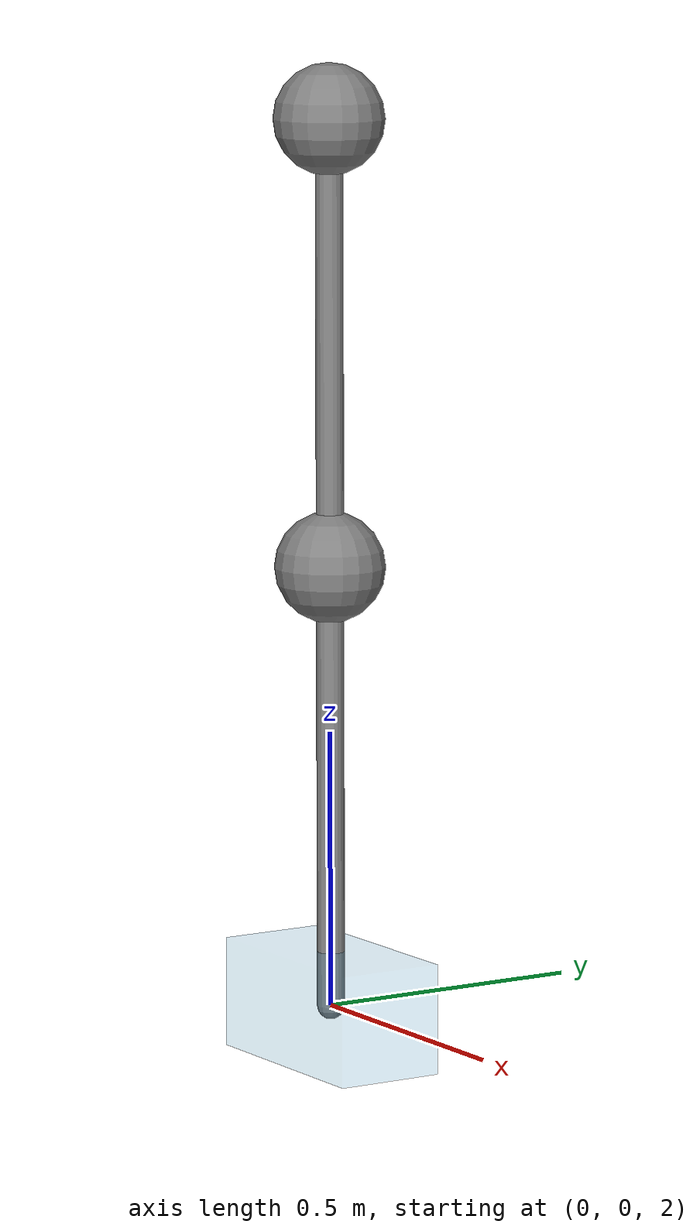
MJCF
<mujoco model="inverted_double_pendulum">

    <!-- Background texture -->
    <asset>
        <texture name="grid" type="2d" builtin="checker" rgb1=".1 .2 .3"
        rgb2=".2 .3 .4" width="100" height="100"/>
        <material name="grid" texture="grid" texrepeat="8 8" reflectance=".2"/>
    </asset>

    <worldbody>
        <!-- Place background -->
        <geom size="2 2 .01" type="plane" material="grid"/>
        <!-- Static light -->
        <light pos="0 0 3" dir="0 0 -1" diffuse=".8 .8 .8" specular=".3 .3 .3"/>

        <!-- Cart -->
        <body name="cart" pos="0 0 2">
            <!-- Sliding joint only in the x direction -->
            <joint name="cart_slide" type="slide" axis="1 0 0"/>
            <!-- Size is half size -->
            <geom name="cart_geom" type="box" size="0.2 0.1 0.1" rgba="0.2 0.6 0.8 0.2"/>
            <inertial mass="1" diaginertia="1e-5 1e-5 1e-5" pos="0 0 0"/>

            <!-- Weightless pendulum -->
            <body name="pendulum_stick1" pos="0 0 0">
                <joint name="hinge1" type="hinge" axis="0 1 0" pos="0 0 0"/>
                <geom name="pendulum_stick_geom1" type="capsule" fromto="0 0 0 0 0 0.8" size="0.025"/>
                <inertial mass="0.0001" diaginertia="1e-5 1e-5 1e-5"  pos="0 0 0"/>

                <!-- Mass on the end of the pendulum -->
                <body name="pendulum1" pos="0 0 0.8">
                    <geom name="pendulum_geom1" type="sphere" size="0.1"/>
                    <inertial mass="0.5" diaginertia="2e-3 2e-3 2e-3" pos="0 0 0"/>

                    <body name="pendulum_stick2" pos="0 0 0">
                        <joint name="hinge2" type="hinge" axis="0 1 0" pos="0 0 0"/>
                        <geom name="pendulum_stick_geom2" type="capsule" fromto="0 0 0 0 0 0.8" size="0.025"/>
                        <inertial mass="0.0001" diaginertia="1e-5 1e-5 1e-5"  pos="0 0 0"/>

                        <!-- Mass on the end of the pendulum -->
                        <body name="pendulum2" pos="0 0 0.8">
                            <geom name="pendulum_geom2" type="sphere" size="0.1"/>
                            <inertial mass="0.5" diaginertia="2e-3 2e-3 2e-3" pos="0 0 0"/>
                        </body>
                    </body>
                </body>
            </body>
        </body>

    </worldbody>

    <!-- Exclude collisions/contact -->
    <contact>
        <exclude body1="cart" body2="pendulum_stick2"/>
        <exclude body1="cart" body2="pendulum2"/>
    </contact>

    <!-- Force actuator on the cart -->
    <actuator>
        <general joint="cart_slide"/>
    </actuator>

</mujoco>
